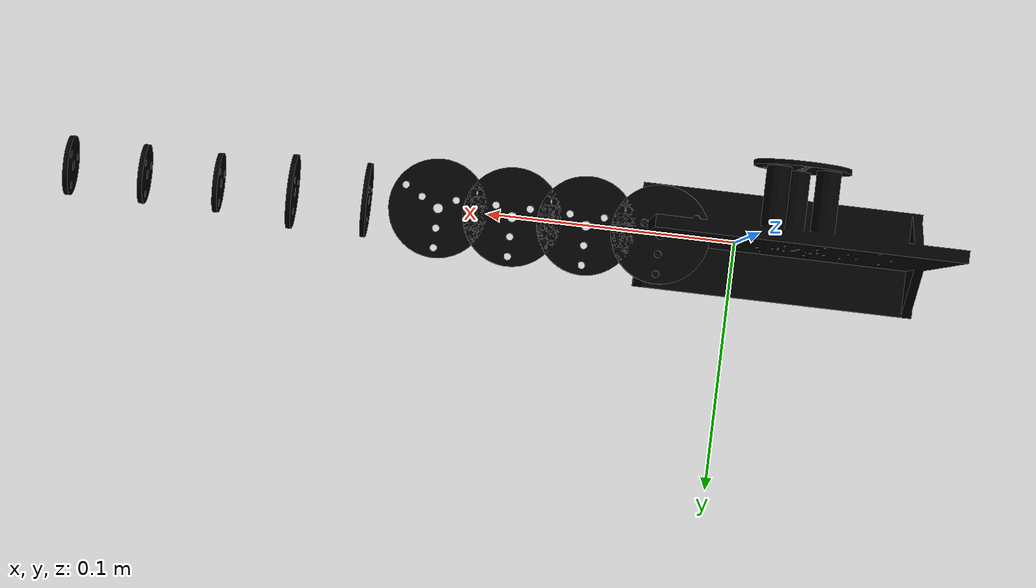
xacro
<?xml version='1.0' encoding='UTF-8'?>
<robot name="tail">
  <link name="base_link">
    <inertial>
      <origin xyz="-0.0246546252283572 -0.0150156534448461 0.00837382744618125" rpy="0.0 -0.0 0.0"/>
      <mass value="0.142896121980389"/>
      <inertia ixx="0.000172848056043176" ixy="-2.56147282967753e-07" ixz="-9.21158957979319e-09" iyy="0.000139660707244487" iyz="-2.60840607484691e-06" izz="0.000290099857074405"/>
    </inertial>
    <visual>
      <geometry>
        <mesh filename="package://tail/meshes/base_link.dae"/>
      </geometry>
      <material name=""/>
      <origin xyz="0.0 0.0 0.0" rpy="0.0 -0.0 0.0"/>
    </visual>
    <collision>
      <geometry>
        <mesh filename="package://tail/meshes/base_link.dae"/>
      </geometry>
      <origin xyz="0.0 0.0 0.0" rpy="0.0 -0.0 0.0"/>
    </collision>
  </link>
  <link name="link1-virtual"/>
  <link name="link1">
    <inertial>
      <origin xyz="2.08166817117217e-17 1.07552855510562e-16 0.001" rpy="0.0 -0.0 0.0"/>
      <mass value="0.00240331837999615"/>
      <inertia ixx="2.45269832602438e-07" ixy="5.9311449081908e-22" ixz="-7.57306469012188e-27" iyy="2.45269832602435e-07" iyz="8.83524213847455e-27" izz="4.88937452951542e-07"/>
    </inertial>
    <visual>
      <geometry>
        <mesh filename="package://tail/meshes/link1.dae"/>
      </geometry>
      <material name=""/>
      <origin xyz="0.0 0.0 0.0" rpy="0.0 -0.0 0.0"/>
    </visual>
    <collision>
      <geometry>
        <mesh filename="package://tail/meshes/link1.dae"/>
      </geometry>
      <origin xyz="0.0 0.0 0.0" rpy="0.0 -0.0 0.0"/>
    </collision>
  </link>
  <link name="link2-virtual"/>
  <link name="link2">
    <inertial>
      <origin xyz="2.08166817117217e-17 1.07552855510562e-16 0.00100000000000001" rpy="0.0 -0.0 0.0"/>
      <mass value="0.00240331837999615"/>
      <inertia ixx="2.45269832602438e-07" ixy="5.93316439210817e-22" ixz="-7.57306469012188e-27" iyy="2.45269832602435e-07" iyz="8.83524213847455e-27" izz="4.88937452951542e-07"/>
    </inertial>
    <visual>
      <geometry>
        <mesh filename="package://tail/meshes/link2.dae"/>
      </geometry>
      <material name=""/>
      <origin xyz="0.0 0.0 0.0" rpy="0.0 -0.0 0.0"/>
    </visual>
    <collision>
      <geometry>
        <mesh filename="package://tail/meshes/link2.dae"/>
      </geometry>
      <origin xyz="0.0 0.0 0.0" rpy="0.0 -0.0 0.0"/>
    </collision>
  </link>
  <link name="link3-virtual"/>
  <link name="link3">
    <inertial>
      <origin xyz="2.08166817117217e-17 1.0842021724855e-16 0.000999999999999987" rpy="0.0 -0.0 0.0"/>
      <mass value="0.00240331837999613"/>
      <inertia ixx="2.45269832602436e-07" ixy="5.92811568231475e-22" ixz="-1.48305850177636e-26" iyy="2.45269832602433e-07" iyz="-1.27795466627806e-26" izz="4.88937452951538e-07"/>
    </inertial>
    <visual>
      <geometry>
        <mesh filename="package://tail/meshes/link3.dae"/>
      </geometry>
      <material name=""/>
      <origin xyz="0.0 0.0 0.0" rpy="0.0 -0.0 0.0"/>
    </visual>
    <collision>
      <geometry>
        <mesh filename="package://tail/meshes/link3.dae"/>
      </geometry>
      <origin xyz="0.0 0.0 0.0" rpy="0.0 -0.0 0.0"/>
    </collision>
  </link>
  <link name="link4-virtual"/>
  <link name="link4">
    <inertial>
      <origin xyz="2.08166817117217e-17 1.07552855510562e-16 0.001" rpy="0.0 -0.0 0.0"/>
      <mass value="0.00240331837999615"/>
      <inertia ixx="2.45269832602438e-07" ixy="5.9311449081908e-22" ixz="-7.57306469012188e-27" iyy="2.45269832602435e-07" iyz="8.83524213847455e-27" izz="4.88937452951542e-07"/>
    </inertial>
    <visual>
      <geometry>
        <mesh filename="package://tail/meshes/link4.dae"/>
      </geometry>
      <material name=""/>
      <origin xyz="0.0 0.0 0.0" rpy="0.0 -0.0 0.0"/>
    </visual>
    <collision>
      <geometry>
        <mesh filename="package://tail/meshes/link4.dae"/>
      </geometry>
      <origin xyz="0.0 0.0 0.0" rpy="0.0 -0.0 0.0"/>
    </collision>
  </link>
  <link name="link5-virtual"/>
  <link name="link5">
    <inertial>
      <origin xyz="-0.001 5.98479599211998e-17 -6.93889390390723e-18" rpy="0.0 -0.0 0.0"/>
      <mass value="0.00134617245206321"/>
      <inertia ixx="1.56230813614397e-07" ixy="3.786532345048e-27" ixz="7.57306469012369e-27" iyy="7.85641309578857e-08" iyz="-1.06426802445178e-22" izz="7.85641309578864e-08"/>
    </inertial>
    <visual>
      <geometry>
        <mesh filename="package://tail/meshes/link5.dae"/>
      </geometry>
      <material name=""/>
      <origin xyz="0.0 0.0 0.0" rpy="0.0 -0.0 0.0"/>
    </visual>
    <collision>
      <geometry>
        <mesh filename="package://tail/meshes/link5.dae"/>
      </geometry>
      <origin xyz="0.0 0.0 0.0" rpy="0.0 -0.0 0.0"/>
    </collision>
  </link>
  <link name="link6-virtual"/>
  <link name="link6">
    <inertial>
      <origin xyz="-0.000999999999999973 5.98479599211998e-17 -6.93889390390723e-18" rpy="0.0 -0.0 0.0"/>
      <mass value="0.00134617245206321"/>
      <inertia ixx="1.56230813614397e-07" ixy="3.786532345048e-27" ixz="7.57306469012369e-27" iyy="7.85641309578857e-08" iyz="-1.06426802445178e-22" izz="7.85641309578864e-08"/>
    </inertial>
    <visual>
      <geometry>
        <mesh filename="package://tail/meshes/link6.dae"/>
      </geometry>
      <material name=""/>
      <origin xyz="0.0 0.0 0.0" rpy="0.0 -0.0 0.0"/>
    </visual>
    <collision>
      <geometry>
        <mesh filename="package://tail/meshes/link6.dae"/>
      </geometry>
      <origin xyz="0.0 0.0 0.0" rpy="0.0 -0.0 0.0"/>
    </collision>
  </link>
  <link name="link7-virtual"/>
  <link name="link7">
    <inertial>
      <origin xyz="-0.001 9.80118763926896e-17 -1.73472347597681e-17" rpy="0.0 -0.0 0.0"/>
      <mass value="0.00083723444218166"/>
      <inertia ixx="6.23317507912513e-08" ixy="3.78653234505031e-27" ixz="7.57306469012324e-27" iyy="3.14449535430192e-08" iyz="-1.06376315347244e-22" izz="3.14449535430199e-08"/>
    </inertial>
    <visual>
      <geometry>
        <mesh filename="package://tail/meshes/link7.dae"/>
      </geometry>
      <material name=""/>
      <origin xyz="0.0 0.0 0.0" rpy="0.0 -0.0 0.0"/>
    </visual>
    <collision>
      <geometry>
        <mesh filename="package://tail/meshes/link7.dae"/>
      </geometry>
      <origin xyz="0.0 0.0 0.0" rpy="0.0 -0.0 0.0"/>
    </collision>
  </link>
  <link name="link8-virtual"/>
  <link name="link8">
    <inertial>
      <origin xyz="-0.001 9.80118763926896e-17 -1.73472347597681e-17" rpy="0.0 -0.0 0.0"/>
      <mass value="0.00083723444218166"/>
      <inertia ixx="6.23317507912513e-08" ixy="3.78653234505015e-27" ixz="7.57306469012327e-27" iyy="3.14449535430192e-08" iyz="-1.06376315347244e-22" izz="3.14449535430199e-08"/>
    </inertial>
    <visual>
      <geometry>
        <mesh filename="package://tail/meshes/link8.dae"/>
      </geometry>
      <material name=""/>
      <origin xyz="0.0 0.0 0.0" rpy="0.0 -0.0 0.0"/>
    </visual>
    <collision>
      <geometry>
        <mesh filename="package://tail/meshes/link8.dae"/>
      </geometry>
      <origin xyz="0.0 0.0 0.0" rpy="0.0 -0.0 0.0"/>
    </collision>
  </link>
  <link name="link9-virtual"/>
  <link name="link9">
    <inertial>
      <origin xyz="-0.000999999999999945 9.80118763926896e-17 -1.73472347597681e-17" rpy="0.0 -0.0 0.0"/>
      <mass value="0.00083723444218166"/>
      <inertia ixx="6.23317507912513e-08" ixy="3.78653234505015e-27" ixz="7.57306469012327e-27" iyy="3.14449535430192e-08" iyz="-1.06376315347244e-22" izz="3.14449535430199e-08"/>
    </inertial>
    <visual>
      <geometry>
        <mesh filename="package://tail/meshes/link9.dae"/>
      </geometry>
      <material name=""/>
      <origin xyz="0.0 0.0 0.0" rpy="0.0 -0.0 0.0"/>
    </visual>
    <collision>
      <geometry>
        <mesh filename="package://tail/meshes/link9.dae"/>
      </geometry>
      <origin xyz="0.0 0.0 0.0" rpy="0.0 -0.0 0.0"/>
    </collision>
  </link>
  <joint name="joint1-virtual" type="revolute">
    <limit effort="30.0" velocity="0.78539816339" lower="-0.78539816339" upper="0.78539816339"/>
    <parent link="base_link"/>
    <child link="link1-virtual"/>
    <axis xyz="0. 1. 0."/>
    <origin xyz="0.0 0.0 0.0" rpy="0.0 -0.0 0.0"/>
  </joint>
  <joint name="joint1" type="revolute">
    <limit effort="30.0" velocity="0.78539816339" lower="-0.78539816339" upper="0.78539816339"/>
    <parent link="link1-virtual"/>
    <child link="link1"/>
    <axis xyz="0. 0. 1."/>
    <origin xyz="0.03 0.0 0.0" rpy="0.0 -0.0 0.0"/>
  </joint>
  <joint name="joint2-virtual" type="revolute">
    <limit effort="30.0" velocity="0.78539816339" lower="-0.78539816339" upper="0.78539816339"/>
    <parent link="link1"/>
    <child link="link2-virtual"/>
    <axis xyz="0. 1. 0."/>
    <origin xyz="0.0 0.0 0.0" rpy="0.0 -0.0 0.0"/>
  </joint>
  <joint name="joint2" type="revolute">
    <limit effort="30.0" velocity="0.78539816339" lower="-0.78539816339" upper="0.78539816339"/>
    <parent link="link2-virtual"/>
    <child link="link2"/>
    <axis xyz="0. 0. 1."/>
    <origin xyz="0.03 0.0 0.0" rpy="0.0 -0.0 0.0"/>
  </joint>
  <joint name="joint3-virtual" type="revolute">
    <limit effort="30.0" velocity="0.78539816339" lower="-0.78539816339" upper="0.78539816339"/>
    <parent link="link2"/>
    <child link="link3-virtual"/>
    <axis xyz="0. 1. 0."/>
    <origin xyz="0.0 0.0 0.0" rpy="0.0 -0.0 0.0"/>
  </joint>
  <joint name="joint3" type="revolute">
    <limit effort="30.0" velocity="0.78539816339" lower="-0.78539816339" upper="0.78539816339"/>
    <parent link="link3-virtual"/>
    <child link="link3"/>
    <axis xyz="0. 0. 1."/>
    <origin xyz="0.03 0.0 0.0" rpy="0.0 -0.0 0.0"/>
  </joint>
  <joint name="joint4-virtual" type="revolute">
    <limit effort="30.0" velocity="0.78539816339" lower="-0.78539816339" upper="0.78539816339"/>
    <parent link="link3"/>
    <child link="link4-virtual"/>
    <axis xyz="0. 1. 0."/>
    <origin xyz="0.0 0.0 0.0" rpy="0.0 -0.0 0.0"/>
  </joint>
  <joint name="joint4" type="revolute">
    <limit effort="30.0" velocity="0.78539816339" lower="-0.78539816339" upper="0.78539816339"/>
    <parent link="link4-virtual"/>
    <child link="link4"/>
    <axis xyz="0. 0. 1."/>
    <origin xyz="0.03 0.0 0.0" rpy="0.0 -0.0 0.0"/>
  </joint>
  <joint name="joint5-virtual" type="revolute">
    <limit effort="30.0" velocity="0.78539816339" lower="-0.78539816339" upper="0.78539816339"/>
    <parent link="link4"/>
    <child link="link5-virtual"/>
    <axis xyz="0. 1. 0."/>
    <origin xyz="0.0 0.0 0.0" rpy="0.0 -0.0 0.0"/>
  </joint>
  <joint name="joint5" type="revolute">
    <limit effort="30.0" velocity="0.78539816339" lower="-0.78539816339" upper="0.78539816339"/>
    <parent link="link5-virtual"/>
    <child link="link5"/>
    <axis xyz="0. 0. 1."/>
    <origin xyz="0.03 0.0 0.0" rpy="0.0 -0.0 0.0"/>
  </joint>
  <joint name="joint6-virtual" type="revolute">
    <limit effort="30.0" velocity="0.78539816339" lower="-0.78539816339" upper="0.78539816339"/>
    <parent link="link5"/>
    <child link="link6-virtual"/>
    <axis xyz="0. 1. 0."/>
    <origin xyz="0.0 0.0 0.0" rpy="0.0 -0.0 0.0"/>
  </joint>
  <joint name="joint6" type="revolute">
    <limit effort="30.0" velocity="0.78539816339" lower="-0.78539816339" upper="0.78539816339"/>
    <parent link="link6-virtual"/>
    <child link="link6"/>
    <axis xyz="0. 0. 1."/>
    <origin xyz="0.03 0.0 0.0" rpy="0.0 -0.0 0.0"/>
  </joint>
  <joint name="joint7-virtual" type="revolute">
    <limit effort="30.0" velocity="0.78539816339" lower="-0.78539816339" upper="0.78539816339"/>
    <parent link="link6"/>
    <child link="link7-virtual"/>
    <axis xyz="0. 1. 0."/>
    <origin xyz="0.0 0.0 0.0" rpy="0.0 -0.0 0.0"/>
  </joint>
  <joint name="joint7" type="revolute">
    <limit effort="30.0" velocity="0.78539816339" lower="-0.78539816339" upper="0.78539816339"/>
    <parent link="link7-virtual"/>
    <child link="link7"/>
    <axis xyz="0. 0. 1."/>
    <origin xyz="0.03 0.0 0.0" rpy="0.0 -0.0 0.0"/>
  </joint>
  <joint name="joint8-virtual" type="revolute">
    <limit effort="30.0" velocity="0.78539816339" lower="-0.78539816339" upper="0.78539816339"/>
    <parent link="link7"/>
    <child link="link8-virtual"/>
    <axis xyz="0. 1. 0."/>
    <origin xyz="0.0 0.0 0.0" rpy="0.0 -0.0 0.0"/>
  </joint>
  <joint name="joint8" type="revolute">
    <limit effort="30.0" velocity="0.78539816339" lower="-0.78539816339" upper="0.78539816339"/>
    <parent link="link8-virtual"/>
    <child link="link8"/>
    <axis xyz="0. 0. 1."/>
    <origin xyz="0.03 0.0 0.0" rpy="0.0 -0.0 0.0"/>
  </joint>
  <joint name="joint9-virtual" type="revolute">
    <limit effort="30.0" velocity="0.78539816339" lower="-0.78539816339" upper="0.78539816339"/>
    <parent link="link8"/>
    <child link="link9-virtual"/>
    <axis xyz="0. 1. 0."/>
    <origin xyz="0.0 0.0 0.0" rpy="0.0 -0.0 0.0"/>
  </joint>
  <joint name="joint9" type="revolute">
    <limit effort="30.0" velocity="0.78539816339" lower="-0.78539816339" upper="0.78539816339"/>
    <parent link="link9-virtual"/>
    <child link="link9"/>
    <axis xyz="0. 0. 1."/>
    <origin xyz="0.03 0.0 0.0" rpy="0.0 -0.0 0.0"/>
  </joint>
  <material name="">
    <color rgba="0.79215686 0.81960784 0.93333333 1.        "/>
  </material>
</robot>
